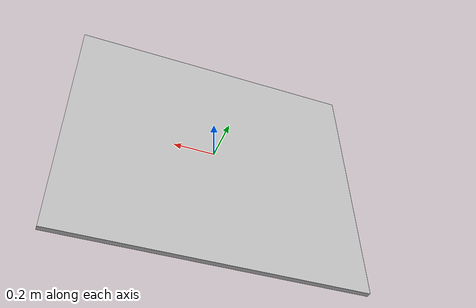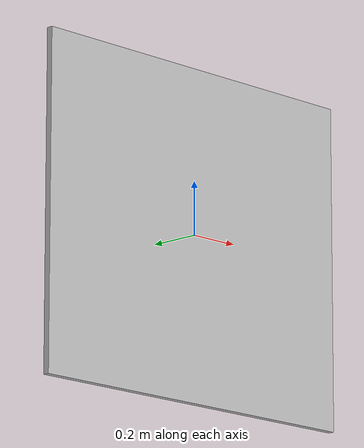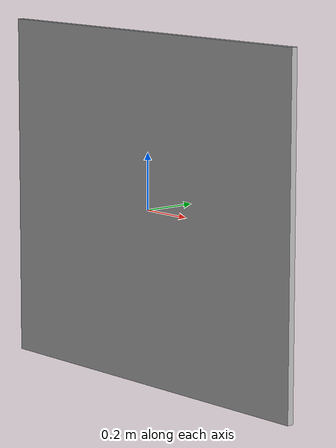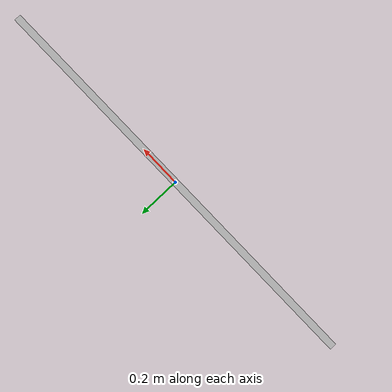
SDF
<?xml version='1.0'?>
<sdf version='1.6'>
  <model name='backdrop'>
  <static>true</static>
    <link name='link_0'>
      <pose frame=''>3e-06 -0 0 0 -0 0</pose>
      <inertial>
        <mass>0.537411</mass>
        <inertia>
          <ixx>0.681223</ixx>
          <ixy>0</ixy>
          <ixz>0</ixz>
          <iyy>2.20249</iyy>
          <iyz>0</iyz>
          <izz>1.52132</izz>
        </inertia>
        <pose frame=''>0 0 0 0 -0 0</pose>
      </inertial>
      <visual name='visual'>
        <pose frame=''>0 0 0 0 -0 0</pose>
        <geometry>
          <box>
            <size>1.4322 0.023688 1.2358</size>
          </box>
        </geometry>
        <material>

          <script>
            <uri>model://backdrop/materials/scripts</uri>
            <uri>model://backdrop/materials/textures</uri>
            <name>backdrop/image</name>
          </script>
        </material>
      </visual>
      <collision name='collision'>
        <laser_retro>0</laser_retro>
        <max_contacts>10</max_contacts>
        <pose frame=''>0 0 0 0 -0 0</pose>
        <geometry>
          <box>
            <size>1.4322 0.023688 1.2358</size>
          </box>
        </geometry>
        <surface>
          <friction>
            <ode>
              <mu>1</mu>
              <mu2>1</mu2>
              <fdir1>0 0 0</fdir1>
              <slip1>0</slip1>
              <slip2>0</slip2>
            </ode>
            <torsional>
              <coefficient>1</coefficient>
              <patch_radius>0</patch_radius>
              <surface_radius>0</surface_radius>
              <use_patch_radius>1</use_patch_radius>
              <ode>
                <slip>0</slip>
              </ode>
            </torsional>
          </friction>
          <bounce>
            <restitution_coefficient>0</restitution_coefficient>
            <threshold>1e+06</threshold>
          </bounce>
          <contact>
            <collide_without_contact>0</collide_without_contact>
            <collide_without_contact_bitmask>1</collide_without_contact_bitmask>
            <collide_bitmask>1</collide_bitmask>
            <ode>
              <soft_cfm>0</soft_cfm>
              <soft_erp>0.2</soft_erp>
              <kp>1e+13</kp>
              <kd>1</kd>
              <max_vel>0.01</max_vel>
              <min_depth>0</min_depth>
            </ode>
            <bullet>
              <split_impulse>1</split_impulse>
              <split_impulse_penetration_threshold>-0.01</split_impulse_penetration_threshold>
              <soft_cfm>0</soft_cfm>
              <soft_erp>0.2</soft_erp>
              <kp>1e+13</kp>
              <kd>1</kd>
            </bullet>
          </contact>
        </surface>
      </collision>
    </link>
    <static>1</static>
    <allow_auto_disable>1</allow_auto_disable>
  </model>
</sdf>
